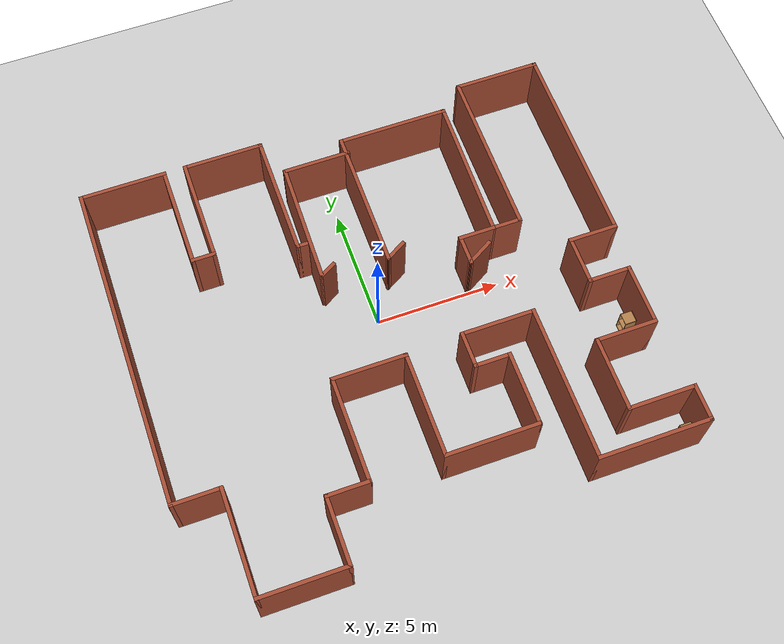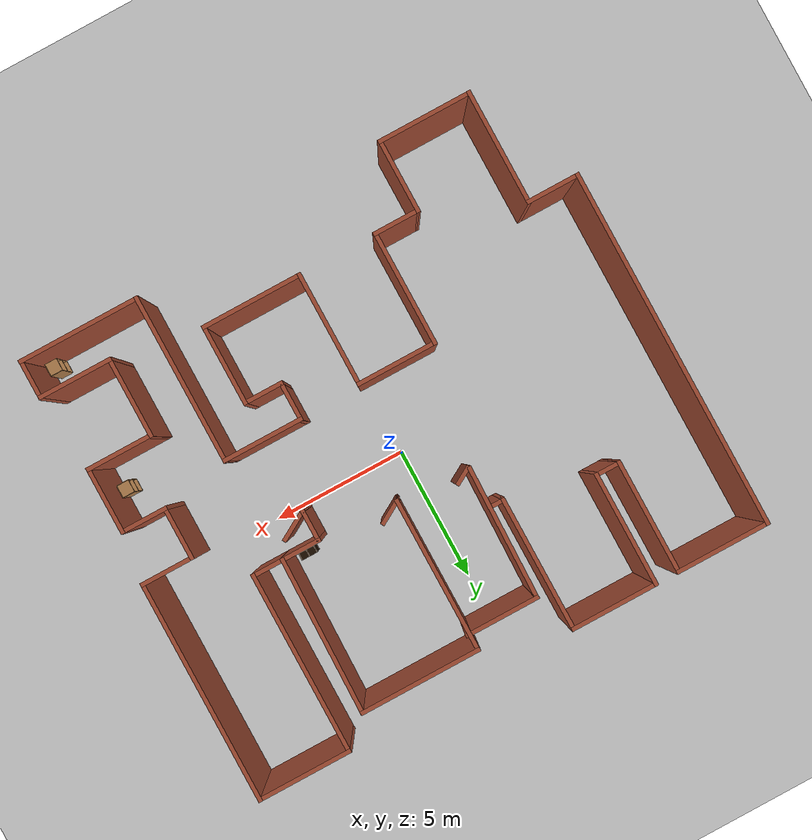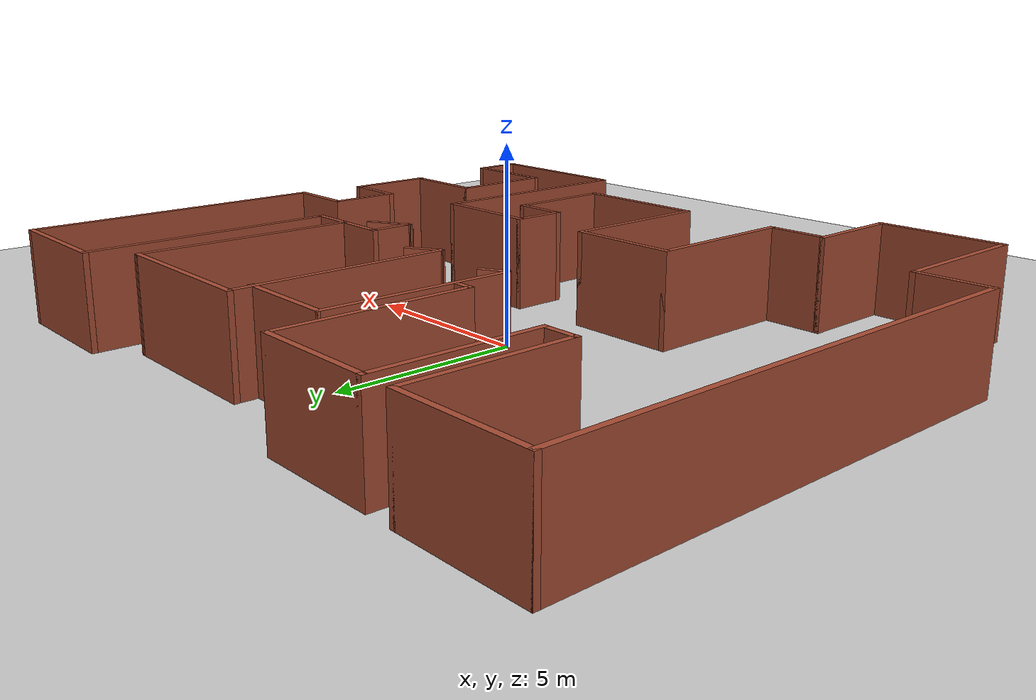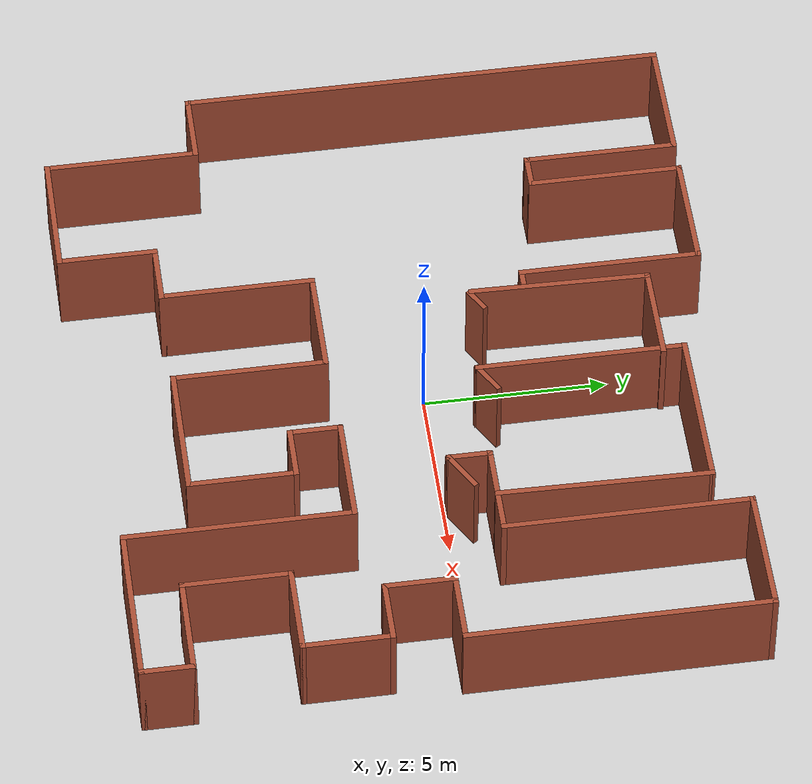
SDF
<sdf version="1.6">
 <world name="default">
  <model name="ground_plane">
   <static>1</static>
   <link name="link">
    <collision name="collision">
     <geometry><plane><normal>0 0 1</normal><size>100 100</size></plane></geometry>
     <surface>
      <contact><collide_bitmask>65535</collide_bitmask></contact>
      <friction><ode><mu>100</mu><mu2>50</mu2></ode></friction>
     </surface>
    </collision>
    <visual name="visual">
     <cast_shadows>0</cast_shadows>
     <geometry><plane><normal>0 0 1</normal><size>100 100</size></plane></geometry>
     <material>
      <script><uri>file://media/materials/scripts/gazebo.material</uri><name>Gazebo/Grey</name></script>
     </material>
    </visual>
   </link>
  </model>
  <model name="map_101">
   <pose>0.049898 -0.777339 0 0 -0 0</pose>
   <link name="Wall_16">
    <collision name="Wall_16_Collision">
     <geometry><box><size>13.25 0.15 2.5</size></box></geometry>
     <pose>0 0 1.25 0 -0 0</pose>
    </collision>
    <visual name="Wall_16_Visual">
     <pose>0 0 1.25 0 -0 0</pose>
     <geometry><box><size>13.25 0.15 2.5</size></box></geometry>
     <material>
      <script><uri>file://media/materials/scripts/gazebo.material</uri><name>Gazebo/Bricks</name></script>
      <ambient>1 1 1 1</ambient>
     </material>
     <meta><layer>0</layer></meta>
    </visual>
    <pose>-9.55 2.05 0 0 -0 -1.5708</pose>
   </link>
   <link name="Wall_17">
    <collision name="Wall_17_Collision">
     <geometry><box><size>2 0.15 2.5</size></box></geometry>
     <pose>0 0 1.25 0 -0 0</pose>
    </collision>
    <visual name="Wall_17_Visual">
     <pose>0 0 1.25 0 -0 0</pose>
     <geometry><box><size>2 0.15 2.5</size></box></geometry>
     <material>
      <script><uri>file://media/materials/scripts/gazebo.material</uri><name>Gazebo/Bricks</name></script>
      <ambient>1 1 1 1</ambient>
     </material>
     <meta><layer>0</layer></meta>
    </visual>
    <pose>-8.625 -4.5 0 0 -0 0</pose>
   </link>
   <link name="Wall_18">
    <collision name="Wall_18_Collision">
     <geometry><box><size>4.25 0.15 2.5</size></box></geometry>
     <pose>0 0 1.25 0 -0 0</pose>
    </collision>
    <visual name="Wall_18_Visual">
     <pose>0 0 1.25 0 -0 0</pose>
     <geometry><box><size>4.25 0.15 2.5</size></box></geometry>
     <material>
      <script><uri>file://media/materials/scripts/gazebo.material</uri><name>Gazebo/Bricks</name></script>
      <ambient>1 1 1 1</ambient>
     </material>
     <meta><layer>0</layer></meta>
    </visual>
    <pose>-7.7 -6.55 0 0 -0 -1.5708</pose>
   </link>
   <link name="Wall_19">
    <collision name="Wall_19_Collision">
     <geometry><box><size>3.5 0.15 2.5</size></box></geometry>
     <pose>0 0 1.25 0 -0 0</pose>
    </collision>
    <visual name="Wall_19_Visual">
     <pose>0 0 1.25 0 -0 0</pose>
     <geometry><box><size>3.5 0.15 2.5</size></box></geometry>
     <material>
      <script><uri>file://media/materials/scripts/gazebo.material</uri><name>Gazebo/Bricks</name></script>
      <ambient>1 1 1 1</ambient>
     </material>
     <meta><layer>0</layer></meta>
    </visual>
    <pose>-6.025 -8.6 0 0 -0 0</pose>
   </link>
   <link name="Wall_20">
    <collision name="Wall_20_Collision">
     <geometry><box><size>2.75 0.15 2.5</size></box></geometry>
     <pose>0 0 1.25 0 -0 0</pose>
    </collision>
    <visual name="Wall_20_Visual">
     <pose>0 0 1.25 0 -0 0</pose>
     <geometry><box><size>2.75 0.15 2.5</size></box></geometry>
     <material>
      <script><uri>file://media/materials/scripts/gazebo.material</uri><name>Gazebo/Bricks</name></script>
      <ambient>1 1 1 1</ambient>
     </material>
     <meta><layer>0</layer></meta>
    </visual>
    <pose>-4.35 -7.3 0 0 -0 1.5708</pose>
   </link>
   <link name="Wall_21">
    <collision name="Wall_21_Collision">
     <geometry><box><size>1.75 0.15 2.5</size></box></geometry>
     <pose>0 0 1.25 0 -0 0</pose>
    </collision>
    <visual name="Wall_21_Visual">
     <pose>0 0 1.25 0 -0 0</pose>
     <geometry><box><size>1.75 0.15 2.5</size></box></geometry>
     <material>
      <script><uri>file://media/materials/scripts/gazebo.material</uri><name>Gazebo/Bricks</name></script>
      <ambient>1 1 1 1</ambient>
     </material>
     <meta><layer>0</layer></meta>
    </visual>
    <pose>-3.55 -6 0 0 -0 0</pose>
   </link>
   <link name="Wall_22">
    <collision name="Wall_22_Collision">
     <geometry><box><size>4.25 0.15 2.5</size></box></geometry>
     <pose>0 0 1.25 0 -0 0</pose>
    </collision>
    <visual name="Wall_22_Visual">
     <pose>0 0 1.25 0 -0 0</pose>
     <geometry><box><size>4.25 0.15 2.5</size></box></geometry>
     <material>
      <script><uri>file://media/materials/scripts/gazebo.material</uri><name>Gazebo/Bricks</name></script>
      <ambient>1 1 1 1</ambient>
     </material>
     <meta><layer>0</layer></meta>
    </visual>
    <pose>-2.75 -3.95 0 0 -0 1.5708</pose>
   </link>
   <link name="Wall_23">
    <collision name="Wall_23_Collision">
     <geometry><box><size>3 0.15 2.5</size></box></geometry>
     <pose>0 0 1.25 0 -0 0</pose>
    </collision>
    <visual name="Wall_23_Visual">
     <pose>0 0 1.25 0 -0 0</pose>
     <geometry><box><size>3 0.15 2.5</size></box></geometry>
     <material>
      <script><uri>file://media/materials/scripts/gazebo.material</uri><name>Gazebo/Bricks</name></script>
      <ambient>1 1 1 1</ambient>
     </material>
     <meta><layer>0</layer></meta>
    </visual>
    <pose>-1.325 -1.9 0 0 -0 0</pose>
   </link>
   <link name="Wall_24">
    <collision name="Wall_24_Collision">
     <geometry><box><size>4.25 0.15 2.5</size></box></geometry>
     <pose>0 0 1.25 0 -0 0</pose>
    </collision>
    <visual name="Wall_24_Visual">
     <pose>0 0 1.25 0 -0 0</pose>
     <geometry><box><size>4.25 0.15 2.5</size></box></geometry>
     <material>
      <script><uri>file://media/materials/scripts/gazebo.material</uri><name>Gazebo/Bricks</name></script>
      <ambient>1 1 1 1</ambient>
     </material>
     <meta><layer>0</layer></meta>
    </visual>
    <pose>0.1 -3.95 0 0 -0 -1.5708</pose>
   </link>
   <link name="Wall_26">
    <collision name="Wall_26_Collision">
     <geometry><box><size>3.75 0.15 2.5</size></box></geometry>
     <pose>0 0 1.25 0 -0 0</pose>
    </collision>
    <visual name="Wall_26_Visual">
     <pose>0 0 1.25 0 -0 0</pose>
     <geometry><box><size>3.75 0.15 2.5</size></box></geometry>
     <material>
      <script><uri>file://media/materials/scripts/gazebo.material</uri><name>Gazebo/Bricks</name></script>
      <ambient>1 1 1 1</ambient>
     </material>
     <meta><layer>0</layer></meta>
    </visual>
    <pose>1.9 -6 0 0 -0 0</pose>
   </link>
   <link name="Wall_27">
    <collision name="Wall_27_Collision">
     <geometry><box><size>3 0.15 2.5</size></box></geometry>
     <pose>0 0 1.25 0 -0 0</pose>
    </collision>
    <visual name="Wall_27_Visual">
     <pose>0 0 1.25 0 -0 0</pose>
     <geometry><box><size>3 0.15 2.5</size></box></geometry>
     <material>
      <script><uri>file://media/materials/scripts/gazebo.material</uri><name>Gazebo/Bricks</name></script>
      <ambient>1 1 1 1</ambient>
     </material>
     <meta><layer>0</layer></meta>
    </visual>
    <pose>3.7 -4.575 0 0 -0 1.5708</pose>
   </link>
   <link name="Wall_28">
    <collision name="Wall_28_Collision">
     <geometry><box><size>1.5 0.15 2.5</size></box></geometry>
     <pose>0 0 1.25 0 -0 0</pose>
    </collision>
    <visual name="Wall_28_Visual">
     <pose>0 0 1.25 0 -0 0</pose>
     <geometry><box><size>1.5 0.15 2.5</size></box></geometry>
     <material>
      <script><uri>file://media/materials/scripts/gazebo.material</uri><name>Gazebo/Bricks</name></script>
      <ambient>1 1 1 1</ambient>
     </material>
     <meta><layer>0</layer></meta>
    </visual>
    <pose>3.025 -3.15 0 0 -0 3.14159</pose>
   </link>
   <link name="Wall_29">
    <collision name="Wall_29_Collision">
     <geometry><box><size>1.5 0.15 2.5</size></box></geometry>
     <pose>0 0 1.25 0 -0 0</pose>
    </collision>
    <visual name="Wall_29_Visual">
     <pose>0 0 1.25 0 -0 0</pose>
     <geometry><box><size>1.5 0.15 2.5</size></box></geometry>
     <material>
      <script><uri>file://media/materials/scripts/gazebo.material</uri><name>Gazebo/Bricks</name></script>
      <ambient>1 1 1 1</ambient>
     </material>
     <meta><layer>0</layer></meta>
    </visual>
    <pose>2.35 -2.475 0 0 -0 1.5708</pose>
   </link>
   <link name="Wall_30">
    <collision name="Wall_30_Collision">
     <geometry><box><size>3 0.15 2.5</size></box></geometry>
     <pose>0 0 1.25 0 -0 0</pose>
    </collision>
    <visual name="Wall_30_Visual">
     <pose>0 0 1.25 0 -0 0</pose>
     <geometry><box><size>3 0.15 2.5</size></box></geometry>
     <material>
      <script><uri>file://media/materials/scripts/gazebo.material</uri><name>Gazebo/Bricks</name></script>
      <ambient>1 1 1 1</ambient>
     </material>
     <meta><layer>0</layer></meta>
    </visual>
    <pose>3.775 -1.8 0 0 -0 0</pose>
   </link>
   <link name="Wall_31">
    <collision name="Wall_31_Collision">
     <geometry><box><size>6.25 0.15 2.5</size></box></geometry>
     <pose>0 0 1.25 0 -0 0</pose>
    </collision>
    <visual name="Wall_31_Visual">
     <pose>0 0 1.25 0 -0 0</pose>
     <geometry><box><size>6.25 0.15 2.5</size></box></geometry>
     <material>
      <script><uri>file://media/materials/scripts/gazebo.material</uri><name>Gazebo/Bricks</name></script>
      <ambient>1 1 1 1</ambient>
     </material>
     <meta><layer>0</layer></meta>
    </visual>
    <pose>5.2 -4.85 0 0 -0 -1.5708</pose>
   </link>
   <link name="Wall_32">
    <collision name="Wall_32_Collision">
     <geometry><box><size>4.5 0.15 2.5</size></box></geometry>
     <pose>0 0 1.25 0 -0 0</pose>
    </collision>
    <visual name="Wall_32_Visual">
     <pose>0 0 1.25 0 -0 0</pose>
     <geometry><box><size>4.5 0.15 2.5</size></box></geometry>
     <material>
      <script><uri>file://media/materials/scripts/gazebo.material</uri><name>Gazebo/Bricks</name></script>
      <ambient>1 1 1 1</ambient>
     </material>
     <meta><layer>0</layer></meta>
    </visual>
    <pose>7.375 -7.9 0 0 -0 0</pose>
   </link>
   <link name="Wall_33">
    <collision name="Wall_33_Collision">
     <geometry><box><size>1.5 0.15 2.5</size></box></geometry>
     <pose>0 0 1.25 0 -0 0</pose>
    </collision>
    <visual name="Wall_33_Visual">
     <pose>0 0 1.25 0 -0 0</pose>
     <geometry><box><size>1.5 0.15 2.5</size></box></geometry>
     <material>
      <script><uri>file://media/materials/scripts/gazebo.material</uri><name>Gazebo/Bricks</name></script>
      <ambient>1 1 1 1</ambient>
     </material>
     <meta><layer>0</layer></meta>
    </visual>
    <pose>9.55 -7.225 0 0 -0 1.5708</pose>
   </link>
   <link name="Wall_34">
    <collision name="Wall_34_Collision">
     <geometry><box><size>2.75 0.15 2.5</size></box></geometry>
     <pose>0 0 1.25 0 -0 0</pose>
    </collision>
    <visual name="Wall_34_Visual">
     <pose>0 0 1.25 0 -0 0</pose>
     <geometry><box><size>2.75 0.15 2.5</size></box></geometry>
     <material>
      <script><uri>file://media/materials/scripts/gazebo.material</uri><name>Gazebo/Bricks</name></script>
      <ambient>1 1 1 1</ambient>
     </material>
     <meta><layer>0</layer></meta>
    </visual>
    <pose>8.25 -6.55 0 0 -0 3.14159</pose>
   </link>
   <link name="Wall_35">
    <collision name="Wall_35_Collision">
     <geometry><box><size>3 0.15 2.5</size></box></geometry>
     <pose>0 0 1.25 0 -0 0</pose>
    </collision>
    <visual name="Wall_35_Visual">
     <pose>0 0 1.25 0 -0 0</pose>
     <geometry><box><size>3 0.15 2.5</size></box></geometry>
     <material>
      <script><uri>file://media/materials/scripts/gazebo.material</uri><name>Gazebo/Bricks</name></script>
      <ambient>1 1 1 1</ambient>
     </material>
     <meta><layer>0</layer></meta>
    </visual>
    <pose>6.95 -5.125 0 0 -0 1.5708</pose>
   </link>
   <link name="Wall_36">
    <collision name="Wall_36_Collision">
     <geometry><box><size>2.5 0.15 2.5</size></box></geometry>
     <pose>0 0 1.25 0 -0 0</pose>
    </collision>
    <visual name="Wall_36_Visual">
     <pose>0 0 1.25 0 -0 0</pose>
     <geometry><box><size>2.5 0.15 2.5</size></box></geometry>
     <material>
      <script><uri>file://media/materials/scripts/gazebo.material</uri><name>Gazebo/Bricks</name></script>
      <ambient>1 1 1 1</ambient>
     </material>
     <meta><layer>0</layer></meta>
    </visual>
    <pose>8.125 -3.7 0 0 -0 0</pose>
   </link>
   <link name="Wall_37">
    <collision name="Wall_37_Collision">
     <geometry><box><size>2.5 0.15 2.5</size></box></geometry>
     <pose>0 0 1.25 0 -0 0</pose>
    </collision>
    <visual name="Wall_37_Visual">
     <pose>0 0 1.25 0 -0 0</pose>
     <geometry><box><size>2.5 0.15 2.5</size></box></geometry>
     <material>
      <script><uri>file://media/materials/scripts/gazebo.material</uri><name>Gazebo/Bricks</name></script>
      <ambient>1 1 1 1</ambient>
     </material>
     <meta><layer>0</layer></meta>
    </visual>
    <pose>9.3 -2.525 0 0 -0 1.5708</pose>
   </link>
   <link name="Wall_38">
    <collision name="Wall_38_Collision">
     <geometry><box><size>1.75 0.15 2.5</size></box></geometry>
     <pose>0 0 1.25 0 -0 0</pose>
    </collision>
    <visual name="Wall_38_Visual">
     <pose>0 0 1.25 0 -0 0</pose>
     <geometry><box><size>1.75 0.15 2.5</size></box></geometry>
     <material>
      <script><uri>file://media/materials/scripts/gazebo.material</uri><name>Gazebo/Bricks</name></script>
      <ambient>1 1 1 1</ambient>
     </material>
     <meta><layer>0</layer></meta>
    </visual>
    <pose>8.5 -1.35 0 0 -0 3.14159</pose>
   </link>
   <link name="Wall_39">
    <collision name="Wall_39_Collision">
     <geometry><box><size>2 0.15 2.5</size></box></geometry>
     <pose>0 0 1.25 0 -0 0</pose>
    </collision>
    <visual name="Wall_39_Visual">
     <pose>0 0 1.25 0 -0 0</pose>
     <geometry><box><size>2 0.15 2.5</size></box></geometry>
     <material>
      <script><uri>file://media/materials/scripts/gazebo.material</uri><name>Gazebo/Bricks</name></script>
      <ambient>1 1 1 1</ambient>
     </material>
     <meta><layer>0</layer></meta>
    </visual>
    <pose>7.7 -0.425 0 0 -0 1.5708</pose>
   </link>
   <link name="Wall_40">
    <collision name="Wall_40_Collision">
     <geometry><box><size>2 0.15 2.5</size></box></geometry>
     <pose>0 0 1.25 0 -0 0</pose>
    </collision>
    <visual name="Wall_40_Visual">
     <pose>0 0 1.25 0 -0 0</pose>
     <geometry><box><size>2 0.15 2.5</size></box></geometry>
     <material>
      <script><uri>file://media/materials/scripts/gazebo.material</uri><name>Gazebo/Bricks</name></script>
      <ambient>1 1 1 1</ambient>
     </material>
     <meta><layer>0</layer></meta>
    </visual>
    <pose>8.625 0.5 0 0 -0 0</pose>
   </link>
   <link name="Wall_41">
    <collision name="Wall_41_Collision">
     <geometry><box><size>8.25 0.15 2.5</size></box></geometry>
     <pose>0 0 1.25 0 -0 0</pose>
    </collision>
    <visual name="Wall_41_Visual">
     <pose>0 0 1.25 0 -0 0</pose>
     <geometry><box><size>8.25 0.15 2.5</size></box></geometry>
     <material>
      <script><uri>file://media/materials/scripts/gazebo.material</uri><name>Gazebo/Bricks</name></script>
      <ambient>1 1 1 1</ambient>
     </material>
     <meta><layer>0</layer></meta>
    </visual>
    <pose>9.55 4.55 0 0 -0 1.5708</pose>
   </link>
   <link name="Wall_61">
    <collision name="Wall_61_Collision">
     <geometry><box><size>4.5 0.15 2.5</size></box></geometry>
     <pose>0 0 1.25 0 -0 0</pose>
    </collision>
    <visual name="Wall_61_Visual">
     <pose>0 0 1.25 0 -0 0</pose>
     <geometry><box><size>4.5 0.15 2.5</size></box></geometry>
     <material>
      <script><uri>file://media/materials/scripts/gazebo.material</uri><name>Gazebo/Bricks</name></script>
      <ambient>1 1 1 1</ambient>
     </material>
     <meta><layer>0</layer></meta>
    </visual>
    <pose>3.025 7.7 0 0 -0 3.14159</pose>
   </link>
   <link name="Wall_62">
    <collision name="Wall_62_Collision">
     <geometry><box><size>5.75 0.15 2.5</size></box></geometry>
     <pose>0 0 1.25 0 -0 0</pose>
    </collision>
    <visual name="Wall_62_Visual">
     <pose>0 0 1.25 0 -0 0</pose>
     <geometry><box><size>5.75 0.15 2.5</size></box></geometry>
     <material>
      <script><uri>file://media/materials/scripts/gazebo.material</uri><name>Gazebo/Bricks</name></script>
      <ambient>1 1 1 1</ambient>
     </material>
     <meta><layer>0</layer></meta>
    </visual>
    <pose>0.85 4.9 0 0 -0 -1.5708</pose>
   </link>
   <link name="Wall_63">
    <collision name="Wall_63_Collision">
     <geometry><box><size>1 0.15 2.5</size></box></geometry>
     <pose>0 0 1.25 0 -0 0</pose>
    </collision>
    <visual name="Wall_63_Visual">
     <pose>0 0 1.25 0 -0 0</pose>
     <geometry><box><size>1 0.15 2.5</size></box></geometry>
     <material>
      <script><uri>file://media/materials/scripts/gazebo.material</uri><name>Gazebo/Bricks</name></script>
      <ambient>1 1 1 1</ambient>
     </material>
     <meta><layer>0</layer></meta>
    </visual>
    <pose>1.21806 2.3125 0 0 -0 0.523599</pose>
   </link>
   <link name="Wall_67">
    <collision name="Wall_67_Collision">
     <geometry><box><size>2.75 0.15 2.5</size></box></geometry>
     <pose>0 0 1.25 0 -0 0</pose>
    </collision>
    <visual name="Wall_67_Visual">
     <pose>0 0 1.25 0 -0 0</pose>
     <geometry><box><size>2.75 0.15 2.5</size></box></geometry>
     <material>
      <script><uri>file://media/materials/scripts/gazebo.material</uri><name>Gazebo/Bricks</name></script>
      <ambient>1 1 1 1</ambient>
     </material>
     <meta><layer>0</layer></meta>
    </visual>
    <pose>-0.382119 7.11123 0 0 -0 3.14159</pose>
   </link>
   <link name="Wall_68">
    <collision name="Wall_68_Collision">
     <geometry><box><size>4.95438 0.15 2.5</size></box></geometry>
     <pose>0 0 1.25 0 -0 0</pose>
    </collision>
    <visual name="Wall_68_Visual">
     <pose>0 0 1.25 0 -0 0</pose>
     <geometry><box><size>4.95438 0.15 2.5</size></box></geometry>
     <material>
      <script><uri>file://media/materials/scripts/gazebo.material</uri><name>Gazebo/Bricks</name></script>
      <ambient>1 1 1 1</ambient>
     </material>
     <meta><layer>0</layer></meta>
    </visual>
    <pose>-1.72864 4.7095 0 0 -0 -1.59017</pose>
   </link>
   <link name="Wall_69">
    <collision name="Wall_69_Collision">
     <geometry><box><size>0.75 0.15 2.5</size></box></geometry>
     <pose>0 0 1.25 0 -0 0</pose>
    </collision>
    <visual name="Wall_69_Visual">
     <pose>0 0 1.25 0 -0 0</pose>
     <geometry><box><size>0.75 0.15 2.5</size></box></geometry>
     <material>
      <script><uri>file://media/materials/scripts/gazebo.material</uri><name>Gazebo/Bricks</name></script>
      <ambient>1 1 1 1</ambient>
     </material>
     <meta><layer>0</layer></meta>
    </visual>
    <pose>-1.46883 2.41123 0 0 -0 0.523599</pose>
   </link>
   <link name="Wall_71">
    <collision name="Wall_71_Collision">
     <geometry><box><size>3.5 0.15 2.5</size></box></geometry>
     <pose>0 0 1.25 0 -0 0</pose>
    </collision>
    <visual name="Wall_71_Visual">
     <pose>0 0 1.25 0 -0 0</pose>
     <geometry><box><size>3.5 0.15 2.5</size></box></geometry>
     <material>
      <script><uri>file://media/materials/scripts/gazebo.material</uri><name>Gazebo/Bricks</name></script>
      <ambient>1 1 1 1</ambient>
     </material>
     <meta><layer>0</layer></meta>
    </visual>
    <pose>-7.875 8.6 0 0 -0 0</pose>
   </link>
   <link name="Wall_72">
    <collision name="Wall_72_Collision">
     <geometry><box><size>4.25 0.15 2.5</size></box></geometry>
     <pose>0 0 1.25 0 -0 0</pose>
    </collision>
    <visual name="Wall_72_Visual">
     <pose>0 0 1.25 0 -0 0</pose>
     <geometry><box><size>4.25 0.15 2.5</size></box></geometry>
     <material>
      <script><uri>file://media/materials/scripts/gazebo.material</uri><name>Gazebo/Bricks</name></script>
      <ambient>1 1 1 1</ambient>
     </material>
     <meta><layer>0</layer></meta>
    </visual>
    <pose>-6.2 6.55 0 0 -0 -1.5708</pose>
   </link>
   <link name="Wall_73">
    <collision name="Wall_73_Collision">
     <geometry><box><size>1 0.15 2.5</size></box></geometry>
     <pose>0 0 1.25 0 -0 0</pose>
    </collision>
    <visual name="Wall_73_Visual">
     <pose>0 0 1.25 0 -0 0</pose>
     <geometry><box><size>1 0.15 2.5</size></box></geometry>
     <material>
      <script><uri>file://media/materials/scripts/gazebo.material</uri><name>Gazebo/Bricks</name></script>
      <ambient>1 1 1 1</ambient>
     </material>
     <meta><layer>0</layer></meta>
    </visual>
    <pose>-5.775 4.5 0 0 -0 0</pose>
   </link>
   <link name="Wall_74">
    <collision name="Wall_74_Collision">
     <geometry><box><size>4.25 0.15 2.5</size></box></geometry>
     <pose>0 0 1.25 0 -0 0</pose>
    </collision>
    <visual name="Wall_74_Visual">
     <pose>0 0 1.25 0 -0 0</pose>
     <geometry><box><size>4.25 0.15 2.5</size></box></geometry>
     <material>
      <script><uri>file://media/materials/scripts/gazebo.material</uri><name>Gazebo/Bricks</name></script>
      <ambient>1 1 1 1</ambient>
     </material>
     <meta><layer>0</layer></meta>
    </visual>
    <pose>-5.35 6.55 0 0 -0 1.5708</pose>
   </link>
   <link name="Wall_75">
    <collision name="Wall_75_Collision">
     <geometry><box><size>3.25 0.15 2.5</size></box></geometry>
     <pose>0 0 1.25 0 -0 0</pose>
    </collision>
    <visual name="Wall_75_Visual">
     <pose>0 0 1.25 0 -0 0</pose>
     <geometry><box><size>3.25 0.15 2.5</size></box></geometry>
     <material>
      <script><uri>file://media/materials/scripts/gazebo.material</uri><name>Gazebo/Bricks</name></script>
      <ambient>1 1 1 1</ambient>
     </material>
     <meta><layer>0</layer></meta>
    </visual>
    <pose>-3.8 8.6 0 0 -0 0</pose>
   </link>
   <link name="Wall_76">
    <collision name="Wall_76_Collision">
     <geometry><box><size>5 0.15 2.5</size></box></geometry>
     <pose>0 0 1.25 0 -0 0</pose>
    </collision>
    <visual name="Wall_76_Visual">
     <pose>0 0 1.25 0 -0 0</pose>
     <geometry><box><size>5 0.15 2.5</size></box></geometry>
     <material>
      <script><uri>file://media/materials/scripts/gazebo.material</uri><name>Gazebo/Bricks</name></script>
      <ambient>1 1 1 1</ambient>
     </material>
     <meta><layer>0</layer></meta>
    </visual>
    <pose>-2.25 6.175 0 0 -0 -1.5708</pose>
   </link>
   <link name="Wall_79">
    <collision name="Wall_79_Collision">
     <geometry><box><size>3.5 0.15 2.5</size></box></geometry>
     <pose>0 0 1.25 0 -0 0</pose>
    </collision>
    <visual name="Wall_79_Visual">
     <pose>0 0 1.25 0 -0 0</pose>
     <geometry><box><size>3.5 0.15 2.5</size></box></geometry>
     <material>
      <script><uri>file://media/materials/scripts/gazebo.material</uri><name>Gazebo/Bricks</name></script>
      <ambient>1 1 1 1</ambient>
     </material>
     <meta><layer>0</layer></meta>
    </visual>
    <pose>7.875 8.6 0 0 -0 3.14159</pose>
   </link>
   <link name="Wall_80">
    <collision name="Wall_80_Collision">
     <geometry><box><size>6.75 0.15 2.5</size></box></geometry>
     <pose>0 0 1.25 0 -0 0</pose>
    </collision>
    <visual name="Wall_80_Visual">
     <pose>0 0 1.25 0 -0 0</pose>
     <geometry><box><size>6.75 0.15 2.5</size></box></geometry>
     <material>
      <script><uri>file://media/materials/scripts/gazebo.material</uri><name>Gazebo/Bricks</name></script>
      <ambient>1 1 1 1</ambient>
     </material>
     <meta><layer>0</layer></meta>
    </visual>
    <pose>6.2 5.3 0 0 -0 -1.5708</pose>
   </link>
   <link name="Wall_83">
    <collision name="Wall_83_Collision">
     <geometry><box><size>1.25 0.15 2.5</size></box></geometry>
     <pose>0 0 1.25 0 -0 0</pose>
    </collision>
    <visual name="Wall_83_Visual">
     <pose>0 0 1.25 0 -0 0</pose>
     <geometry><box><size>1.25 0.15 2.5</size></box></geometry>
     <material>
      <script><uri>file://media/materials/scripts/gazebo.material</uri><name>Gazebo/Bricks</name></script>
      <ambient>1 1 1 1</ambient>
     </material>
     <meta><layer>0</layer></meta>
    </visual>
    <pose>5.65 2 0 0 -0 3.14159</pose>
   </link>
   <link name="Wall_84">
    <collision name="Wall_84_Collision">
     <geometry><box><size>5.85088 0.15 2.5</size></box></geometry>
     <pose>0 0 1.25 0 -0 0</pose>
    </collision>
    <visual name="Wall_84_Visual">
     <pose>0 0 1.25 0 -0 0</pose>
     <geometry><box><size>5.85088 0.15 2.5</size></box></geometry>
     <material>
      <script><uri>file://media/materials/scripts/gazebo.material</uri><name>Gazebo/Bricks</name></script>
      <ambient>1 1 1 1</ambient>
     </material>
     <meta><layer>0</layer></meta>
    </visual>
    <pose>5.15 4.85 0 0 -0 1.55325</pose>
   </link>
   <link name="Wall_86">
    <collision name="Wall_86_Collision">
     <geometry><box><size>1.5 0.15 2.5</size></box></geometry>
     <pose>0 0 1.25 0 -0 0</pose>
    </collision>
    <visual name="Wall_86_Visual">
     <pose>0 0 1.25 0 -0 0</pose>
     <geometry><box><size>1.5 0.15 2.5</size></box></geometry>
     <material>
      <script><uri>file://media/materials/scripts/gazebo.material</uri><name>Gazebo/Bricks</name></script>
      <ambient>1 1 1 1</ambient>
     </material>
     <meta><layer>0</layer></meta>
    </visual>
    <pose>4.425 2 0 0 -0 3.14159</pose>
   </link>
   <link name="Wall_92">
    <collision name="Wall_92_Collision">
     <geometry><box><size>1.25 0.15 2.5</size></box></geometry>
     <pose>0 0 1.25 0 -0 0</pose>
    </collision>
    <visual name="Wall_92_Visual">
     <pose>0 0 1.25 0 -0 0</pose>
     <geometry><box><size>1.25 0.15 2.5</size></box></geometry>
     <material>
      <script><uri>file://media/materials/scripts/gazebo.material</uri><name>Gazebo/Bricks</name></script>
      <ambient>1 1 1 1</ambient>
     </material>
     <meta><layer>0</layer></meta>
    </visual>
    <pose>3.75 1.45 0 0 -0 -1.5708</pose>
   </link>
   <link name="Wall_93">
    <collision name="Wall_93_Collision">
     <geometry><box><size>1.25 0.15 2.5</size></box></geometry>
     <pose>0 0 1.25 0 -0 0</pose>
    </collision>
    <visual name="Wall_93_Visual">
     <pose>0 0 1.25 0 -0 0</pose>
     <geometry><box><size>1.25 0.15 2.5</size></box></geometry>
     <material>
      <script><uri>file://media/materials/scripts/gazebo.material</uri><name>Gazebo/Bricks</name></script>
      <ambient>1 1 1 1</ambient>
     </material>
     <meta><layer>0</layer></meta>
    </visual>
    <pose>4.22631 1.175 0 0 -0 0.523599</pose>
   </link>
   <link name="Wall_95">
    <collision name="Wall_95_Collision">
     <geometry><box><size>0.5 0.15 2.5</size></box></geometry>
     <pose>0 0 1.25 0 -0 0</pose>
    </collision>
    <visual name="Wall_95_Visual">
     <pose>0 0 1.25 0 -0 0</pose>
     <geometry><box><size>0.5 0.15 2.5</size></box></geometry>
     <material>
      <script><uri>file://media/materials/scripts/gazebo.material</uri><name>Gazebo/Bricks</name></script>
      <ambient>1 1 1 1</ambient>
     </material>
     <meta><layer>0</layer></meta>
    </visual>
    <pose>-2.075 3.75 0 0 -0 0</pose>
   </link>
   <static>1</static>
  </model>
  <model name="6_Cube_StorageE_0">
   <link name="Wall_0">
    <pose>0 0 0.01 0 -0 0</pose>
    <inertial>
     <mass>1.6201</mass>
     <inertia><ixx>0.0119</ixx><iyy>0.0631</iyy><izz>0.0513</izz><ixy>0</ixy><ixz>0</ixz><iyz>0</iyz></inertia>
    </inertial>
    <collision name="Wall_0_Collision"><geometry><box><size>0.616 0.296 0.02</size></box></geometry></collision>
    <visual name="Wall_0_Visual">
     <geometry><box><size>0.616 0.296 0.02</size></box></geometry>
     <material>
      <script><uri>file://media/materials/scripts/gazebo.material</uri><name>Gazebo/Grey</name></script>
      <ambient>0.105882 0.0509804 0 1</ambient>
     </material>
    </visual>
   </link>
   <joint name="0_2" type="fixed">
    <pose>-0.308 0 0 0 -0 0</pose>
    <parent>Wall_2</parent>
    <child>Wall_0</child>
    <axis>
     <xyz>1 0 0</xyz>
     <use_parent_model_frame>0</use_parent_model_frame>
     <limit><lower>-1e+16</lower><upper>1e+16</upper></limit>
    </axis>
   </joint>
   <joint name="0_12" type="fixed">
    <parent>Wall_12</parent>
    <child>Wall_0</child>
    <axis>
     <xyz>0 0 1</xyz>
     <use_parent_model_frame>0</use_parent_model_frame>
     <limit><lower>-1e+16</lower><upper>1e+16</upper></limit>
    </axis>
   </joint>
   <joint name="0_4" type="fixed">
    <pose>0.308 0 0 0 -0 0</pose>
    <parent>Wall_4</parent>
    <child>Wall_0</child>
    <axis>
     <xyz>1 0 0</xyz>
     <use_parent_model_frame>0</use_parent_model_frame>
     <limit><lower>-1e+16</lower><upper>1e+16</upper></limit>
    </axis>
   </joint>
   <link name="Wall_10">
    <pose>0 0 0.61 0 -0 0</pose>
    <inertial>
     <mass>1.6201</mass>
     <inertia><ixx>0.0119</ixx><iyy>0.0631</iyy><izz>0.0513</izz><ixy>0</ixy><ixz>0</ixz><iyz>0</iyz></inertia>
    </inertial>
    <collision name="Wall_10_Collision"><geometry><box><size>0.616 0.296 0.02</size></box></geometry></collision>
    <visual name="Wall_10_Visual">
     <geometry><box><size>0.616 0.296 0.02</size></box></geometry>
     <material>
      <script><uri>file://media/materials/scripts/gazebo.material</uri><name>Gazebo/Grey</name></script>
      <ambient>0.105882 0.0509804 0 1</ambient>
     </material>
    </visual>
   </link>
   <joint name="10_2" type="fixed">
    <pose>-0.308 0 0 0 -0 0</pose>
    <parent>Wall_2</parent>
    <child>Wall_10</child>
    <axis>
     <xyz>1 0 0</xyz>
     <use_parent_model_frame>0</use_parent_model_frame>
     <limit><lower>-1e+16</lower><upper>1e+16</upper></limit>
    </axis>
   </joint>
   <joint name="10_12" type="fixed">
    <parent>Wall_12</parent>
    <child>Wall_10</child>
    <axis>
     <xyz>0 0 1</xyz>
     <use_parent_model_frame>0</use_parent_model_frame>
     <limit><lower>-1e+16</lower><upper>1e+16</upper></limit>
    </axis>
   </joint>
   <joint name="10_4" type="fixed">
    <pose>0.308 0 0 0 -0 0</pose>
    <parent>Wall_4</parent>
    <child>Wall_10</child>
    <axis>
     <xyz>1 0 0</xyz>
     <use_parent_model_frame>0</use_parent_model_frame>
     <limit><lower>-1e+16</lower><upper>1e+16</upper></limit>
    </axis>
   </joint>
   <link name="Wall_12">
    <pose>0 0 0.4575 0 -0 0</pose>
    <inertial>
     <mass>2.4065</mass>
     <inertia><ixx>0.0177</ixx><iyy>0.1855</iyy><izz>0.168</izz><ixy>0</ixy><ixz>0</ixz><iyz>0</iyz></inertia>
    </inertial>
    <collision name="Wall_12_Collision"><geometry><box><size>0.02 0.296 0.915</size></box></geometry></collision>
    <visual name="Wall_12_Visual">
     <geometry><box><size>0.02 0.296 0.915</size></box></geometry>
     <material>
      <script><uri>file://media/materials/scripts/gazebo.material</uri><name>Gazebo/Grey</name></script>
      <ambient>0.105882 0.0509804 0 1</ambient>
     </material>
    </visual>
   </link>
   <link name="Wall_2">
    <pose>-0.298 0 0.4575 0 -0 0</pose>
    <inertial>
     <mass>2.4065</mass>
     <inertia><ixx>0.0177</ixx><iyy>0.1855</iyy><izz>0.168</izz><ixy>0</ixy><ixz>0</ixz><iyz>0</iyz></inertia>
    </inertial>
    <collision name="Wall_2_Collision"><geometry><box><size>0.02 0.296 0.915</size></box></geometry></collision>
    <visual name="Wall_2_Visual">
     <geometry><box><size>0.02 0.296 0.915</size></box></geometry>
     <material>
      <script><uri>file://media/materials/scripts/gazebo.material</uri><name>Gazebo/Grey</name></script>
      <ambient>0.105882 0.0509804 0 1</ambient>
     </material>
    </visual>
   </link>
   <link name="Wall_4">
    <pose>0.298 0 0.4575 0 -0 0</pose>
    <inertial>
     <mass>2.4065</mass>
     <inertia><ixx>0.0177</ixx><iyy>0.1855</iyy><izz>0.168</izz><ixy>0</ixy><ixz>0</ixz><iyz>0</iyz></inertia>
    </inertial>
    <collision name="Wall_4_Collision"><geometry><box><size>0.02 0.296 0.915</size></box></geometry></collision>
    <visual name="Wall_4_Visual">
     <geometry><box><size>0.02 0.296 0.915</size></box></geometry>
     <material>
      <script><uri>file://media/materials/scripts/gazebo.material</uri><name>Gazebo/Grey</name></script>
      <ambient>0.105882 0.0509804 0 1</ambient>
     </material>
    </visual>
   </link>
   <link name="Wall_6">
    <pose>0 0 0.905 0 -0 0</pose>
    <inertial>
     <mass>1.6201</mass>
     <inertia><ixx>0.0119</ixx><iyy>0.0631</iyy><izz>0.0513</izz><ixy>0</ixy><ixz>0</ixz><iyz>0</iyz></inertia>
    </inertial>
    <collision name="Wall_6_Collision"><geometry><box><size>0.616 0.296 0.02</size></box></geometry></collision>
    <visual name="Wall_6_Visual">
     <geometry><box><size>0.616 0.296 0.02</size></box></geometry>
     <material>
      <script><uri>file://media/materials/scripts/gazebo.material</uri><name>Gazebo/Grey</name></script>
      <ambient>0.105882 0.0509804 0 1</ambient>
     </material>
    </visual>
   </link>
   <joint name="6_2" type="fixed">
    <pose>-0.308 0 0 0 -0 0</pose>
    <parent>Wall_2</parent>
    <child>Wall_6</child>
    <axis>
     <xyz>2 0 0</xyz>
     <use_parent_model_frame>0</use_parent_model_frame>
     <limit><lower>-1e+16</lower><upper>1e+16</upper></limit>
    </axis>
   </joint>
   <joint name="6_12" type="fixed">
    <parent>Wall_12</parent>
    <child>Wall_6</child>
    <axis>
     <xyz>0 0 1</xyz>
     <use_parent_model_frame>0</use_parent_model_frame>
     <limit><lower>-1e+16</lower><upper>1e+16</upper></limit>
    </axis>
   </joint>
   <joint name="6_4" type="fixed">
    <pose>0.308 0 0 0 -0 0</pose>
    <parent>Wall_4</parent>
    <child>Wall_6</child>
    <axis>
     <xyz>1 0 0</xyz>
     <use_parent_model_frame>0</use_parent_model_frame>
     <limit><lower>-1e+16</lower><upper>1e+16</upper></limit>
    </axis>
   </joint>
   <link name="Wall_8">
    <pose>0 0 0.305 0 -0 0</pose>
    <inertial>
     <mass>1.6201</mass>
     <inertia><ixx>0.0119</ixx><iyy>0.0631</iyy><izz>0.0513</izz><ixy>0</ixy><ixz>0</ixz><iyz>0</iyz></inertia>
    </inertial>
    <collision name="Wall_8_Collision"><geometry><box><size>0.616 0.296 0.02</size></box></geometry></collision>
    <visual name="Wall_8_Visual">
     <geometry><box><size>0.616 0.296 0.02</size></box></geometry>
     <material>
      <script><uri>file://media/materials/scripts/gazebo.material</uri><name>Gazebo/Grey</name></script>
      <ambient>0.105882 0.0509804 0 1</ambient>
     </material>
    </visual>
   </link>
   <joint name="8_2" type="fixed">
    <pose>-0.308 0 0 0 -0 0</pose>
    <parent>Wall_2</parent>
    <child>Wall_8</child>
    <axis>
     <xyz>1 0 0</xyz>
     <use_parent_model_frame>0</use_parent_model_frame>
     <limit><lower>-1e+16</lower><upper>1e+16</upper></limit>
    </axis>
   </joint>
   <joint name="8_12" type="fixed">
    <parent>Wall_12</parent>
    <child>Wall_8</child>
    <axis>
     <xyz>0 0 1</xyz>
     <use_parent_model_frame>0</use_parent_model_frame>
     <limit><lower>-1e+16</lower><upper>1e+16</upper></limit>
    </axis>
   </joint>
   <joint name="8_4" type="fixed">
    <pose>0.308 0 0 0 -0 0</pose>
    <parent>Wall_4</parent>
    <child>Wall_8</child>
    <axis>
     <xyz>1 0 0</xyz>
     <use_parent_model_frame>0</use_parent_model_frame>
     <limit><lower>-1e+16</lower><upper>1e+16</upper></limit>
    </axis>
   </joint>
   <static>1</static>
   <pose>4.52875 1.50012 0 0 -0 0</pose>
  </model>
  <model name="cabinet_0">
   <static>1</static>
   <link name="cabinet_bottom_plate">
    <inertial>
     <pose>0 0 -1 0 -0 0</pose>
     <inertia><ixx>2.05</ixx><ixy>0</ixy><ixz>0</ixz><iyy>2.05</iyy><iyz>0</iyz><izz>2.05</izz></inertia>
     <mass>25</mass>
    </inertial>
    <collision name="cabinet_bottom_plate_geom">
     <pose>0 0 0.01 0 -0 0</pose>
     <geometry><box><size>0.45 0.45 0.02</size></box></geometry>
    </collision>
    <visual name="cabinet_bottom_plate_geom_visual">
     <pose>0 0 0.01 0 -0 0</pose>
     <geometry><box><size>0.45 0.45 0.02</size></box></geometry>
     <material>
      <script><uri>file://media/materials/scripts/gazebo.material</uri><name>Gazebo/Wood</name></script>
     </material>
    </visual>
    <collision name="cabinet_bottom_plate_geom_cabinet_back_plate">
     <pose>0.235 0 0.51 0 -0 0</pose>
     <geometry><box><size>0.02 0.45 1.02</size></box></geometry>
    </collision>
    <visual name="cabinet_bottom_plate_geom_cabinet_back_plate_visual">
     <pose>0.235 0 0.51 0 -0 0</pose>
     <geometry><box><size>0.02 0.45 1.02</size></box></geometry>
     <material>
      <script><uri>file://media/materials/scripts/gazebo.material</uri><name>Gazebo/Wood</name></script>
     </material>
    </visual>
    <collision name="cabinet_bottom_plate_geom_cabinet_left_plate">
     <pose>0 0.235 0.51 0 -0 0</pose>
     <geometry><box><size>0.45 0.02 1.02</size></box></geometry>
    </collision>
    <visual name="cabinet_bottom_plate_geom_cabinet_left_plate_visual">
     <pose>0 0.235 0.51 0 -0 0</pose>
     <geometry><box><size>0.45 0.02 1.02</size></box></geometry>
     <material>
      <script><uri>file://media/materials/scripts/gazebo.material</uri><name>Gazebo/Wood</name></script>
     </material>
    </visual>
    <collision name="cabinet_bottom_plate_geom_cabinet_middle_plate">
     <pose>0 0 0.51 0 -0 0</pose>
     <geometry><box><size>0.45 0.45 0.02</size></box></geometry>
    </collision>
    <visual name="cabinet_bottom_plate_geom_cabinet_middle_plate_visual">
     <pose>0 0 0.51 0 -0 0</pose>
     <geometry><box><size>0.45 0.45 0.02</size></box></geometry>
     <material>
      <script><uri>file://media/materials/scripts/gazebo.material</uri><name>Gazebo/Wood</name></script>
     </material>
    </visual>
    <collision name="cabinet_bottom_plate_geom_cabinet_right_plate">
     <pose>0 -0.235 0.51 0 -0 0</pose>
     <geometry><box><size>0.45 0.02 1.02</size></box></geometry>
    </collision>
    <visual name="cabinet_bottom_plate_geom_cabinet_right_plate_visual">
     <pose>0 -0.235 0.51 0 -0 0</pose>
     <geometry><box><size>0.45 0.02 1.02</size></box></geometry>
     <material>
      <script><uri>file://media/materials/scripts/gazebo.material</uri><name>Gazebo/Wood</name></script>
     </material>
    </visual>
    <collision name="cabinet_bottom_plate_geom_cabinet_top_plate">
     <pose>0 0 1.01 0 -0 0</pose>
     <geometry><box><size>0.45 0.45 0.02</size></box></geometry>
    </collision>
    <visual name="cabinet_bottom_plate_geom_cabinet_top_plate_visual">
     <pose>0 0 1.01 0 -0 0</pose>
     <geometry><box><size>0.45 0.45 0.02</size></box></geometry>
     <material>
      <script><uri>file://media/materials/scripts/gazebo.material</uri><name>Gazebo/Wood</name></script>
     </material>
    </visual>
   </link>
   <pose>9.16889 -8.37246 0 0 -0 0</pose>
  </model>
  <model name="cabinet_1">
   <static>1</static>
   <link name="cabinet_bottom_plate">
    <inertial>
     <pose>0 0 -1 0 -0 0</pose>
     <inertia><ixx>2.05</ixx><ixy>0</ixy><ixz>0</ixz><iyy>2.05</iyy><iyz>0</iyz><izz>2.05</izz></inertia>
     <mass>25</mass>
    </inertial>
    <collision name="cabinet_bottom_plate_geom">
     <pose>0 0 0.01 0 -0 0</pose>
     <geometry><box><size>0.45 0.45 0.02</size></box></geometry>
    </collision>
    <visual name="cabinet_bottom_plate_geom_visual">
     <pose>0 0 0.01 0 -0 0</pose>
     <geometry><box><size>0.45 0.45 0.02</size></box></geometry>
     <material>
      <script><uri>file://media/materials/scripts/gazebo.material</uri><name>Gazebo/Wood</name></script>
     </material>
    </visual>
    <collision name="cabinet_bottom_plate_geom_cabinet_back_plate">
     <pose>0.235 0 0.51 0 -0 0</pose>
     <geometry><box><size>0.02 0.45 1.02</size></box></geometry>
    </collision>
    <visual name="cabinet_bottom_plate_geom_cabinet_back_plate_visual">
     <pose>0.235 0 0.51 0 -0 0</pose>
     <geometry><box><size>0.02 0.45 1.02</size></box></geometry>
     <material>
      <script><uri>file://media/materials/scripts/gazebo.material</uri><name>Gazebo/Wood</name></script>
     </material>
    </visual>
    <collision name="cabinet_bottom_plate_geom_cabinet_left_plate">
     <pose>0 0.235 0.51 0 -0 0</pose>
     <geometry><box><size>0.45 0.02 1.02</size></box></geometry>
    </collision>
    <visual name="cabinet_bottom_plate_geom_cabinet_left_plate_visual">
     <pose>0 0.235 0.51 0 -0 0</pose>
     <geometry><box><size>0.45 0.02 1.02</size></box></geometry>
     <material>
      <script><uri>file://media/materials/scripts/gazebo.material</uri><name>Gazebo/Wood</name></script>
     </material>
    </visual>
    <collision name="cabinet_bottom_plate_geom_cabinet_middle_plate">
     <pose>0 0 0.51 0 -0 0</pose>
     <geometry><box><size>0.45 0.45 0.02</size></box></geometry>
    </collision>
    <visual name="cabinet_bottom_plate_geom_cabinet_middle_plate_visual">
     <pose>0 0 0.51 0 -0 0</pose>
     <geometry><box><size>0.45 0.45 0.02</size></box></geometry>
     <material>
      <script><uri>file://media/materials/scripts/gazebo.material</uri><name>Gazebo/Wood</name></script>
     </material>
    </visual>
    <collision name="cabinet_bottom_plate_geom_cabinet_right_plate">
     <pose>0 -0.235 0.51 0 -0 0</pose>
     <geometry><box><size>0.45 0.02 1.02</size></box></geometry>
    </collision>
    <visual name="cabinet_bottom_plate_geom_cabinet_right_plate_visual">
     <pose>0 -0.235 0.51 0 -0 0</pose>
     <geometry><box><size>0.45 0.02 1.02</size></box></geometry>
     <material>
      <script><uri>file://media/materials/scripts/gazebo.material</uri><name>Gazebo/Wood</name></script>
     </material>
    </visual>
    <collision name="cabinet_bottom_plate_geom_cabinet_top_plate">
     <pose>0 0 1.01 0 -0 0</pose>
     <geometry><box><size>0.45 0.45 0.02</size></box></geometry>
    </collision>
    <visual name="cabinet_bottom_plate_geom_cabinet_top_plate_visual">
     <pose>0 0 1.01 0 -0 0</pose>
     <geometry><box><size>0.45 0.45 0.02</size></box></geometry>
     <material>
      <script><uri>file://media/materials/scripts/gazebo.material</uri><name>Gazebo/Wood</name></script>
     </material>
    </visual>
   </link>
   <pose>8.99748 -3.47369 0 0 -0 0</pose>
  </model>
 </world>
</sdf>
